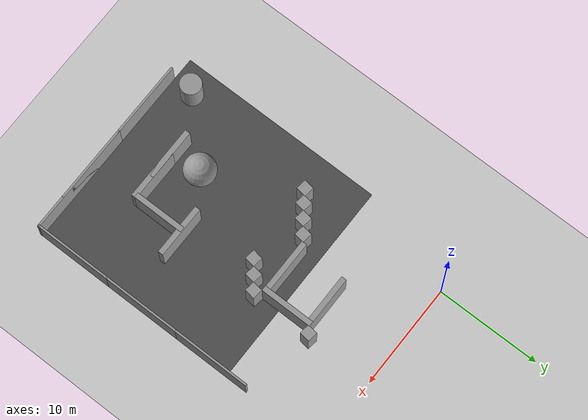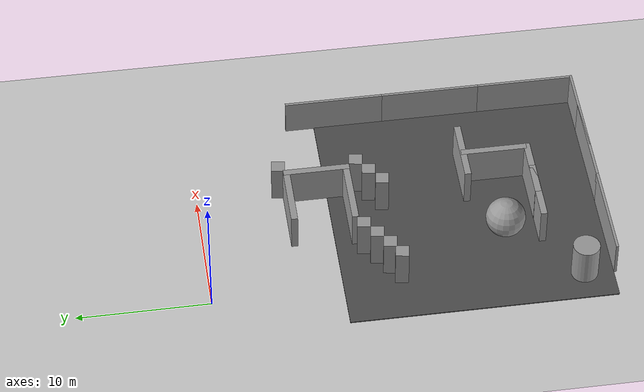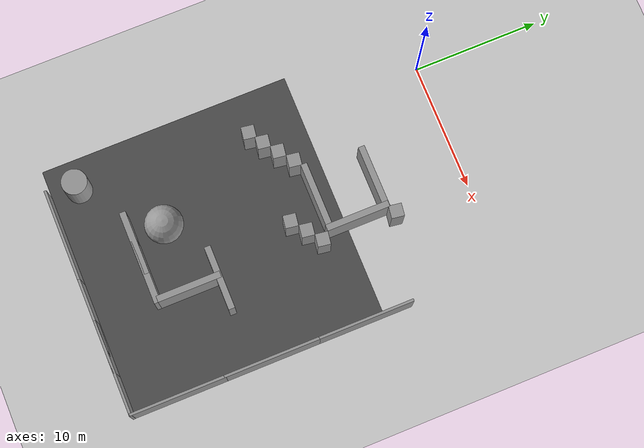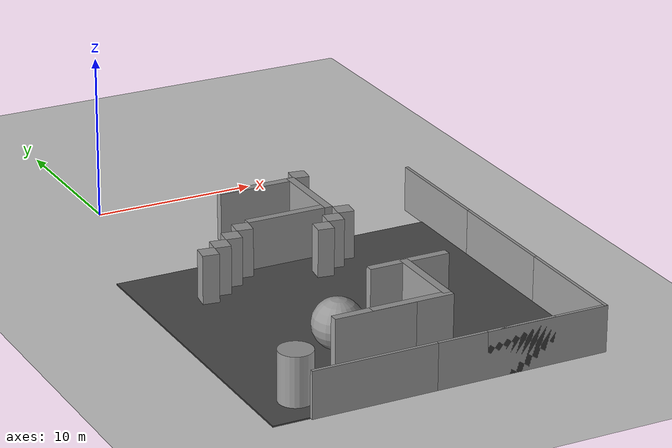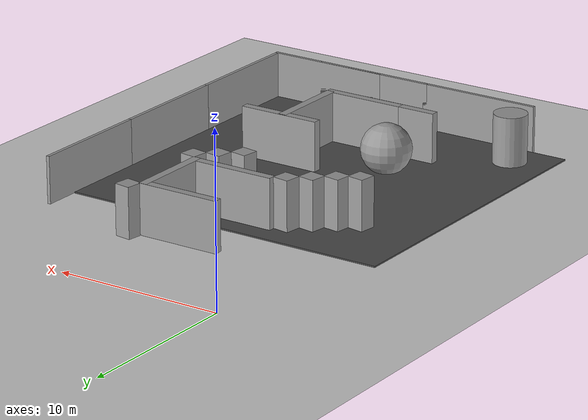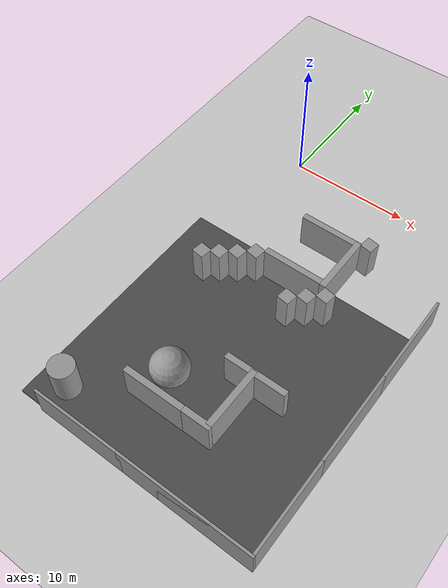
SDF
<sdf version="1.6">
 <world name="default">
  <model name="ground_plane">
   <static>1</static>
   <link name="link">
    <collision name="collision">
     <geometry><plane><normal>0 0 1</normal><size>100 100</size></plane></geometry>
     <surface>
      <contact><collide_bitmask>65535</collide_bitmask></contact>
      <friction><ode><mu>100</mu><mu2>50</mu2></ode></friction>
     </surface>
    </collision>
    <visual name="visual">
     <cast_shadows>0</cast_shadows>
     <geometry><plane><normal>0 0 1</normal><size>100 100</size></plane></geometry>
     <material>
      <script><uri>file://media/materials/scripts/gazebo.material</uri><name>Gazebo/Grey</name></script>
     </material>
    </visual>
   </link>
  </model>
  <model name="asphalt_plane_0_clone_0">
   <static>1</static>
   <link name="link">
    <collision name="collision"><geometry><box><size>20 20 0.1</size></box></geometry></collision>
    <visual name="visual">
     <cast_shadows>0</cast_shadows>
     <geometry><box><size>20 20 0.1</size></box></geometry>
     <material>
      <script>
       <uri>model://asphalt_plane/materials/scripts</uri>
       <uri>model://asphalt_plane/materials/textures</uri>
       <name>vrc/asphalt</name>
      </script>
     </material>
    </visual>
   </link>
   <pose>6.79446 -19.8065 0 0 -0 0</pose>
  </model>
  <model name="grey_wall_clone_clone_3">
   <static>1</static>
   <link name="link">
    <pose>0 0 1.4 0 -0 0</pose>
    <collision name="collision"><geometry><box><size>7.5 0.2 2.8</size></box></geometry></collision>
    <visual name="visual">
     <cast_shadows>0</cast_shadows>
     <geometry><box><size>7.5 0.2 2.8</size></box></geometry>
     <material>
      <script>
       <uri>model://grey_wall/materials/scripts</uri>
       <uri>model://grey_wall/materials/textures</uri>
       <name>vrc/grey_wall</name>
      </script>
     </material>
    </visual>
    <enable_wind>1</enable_wind>
   </link>
   <pose>16.9 -26.2145 0 0 -0 1.5707</pose>
   <enable_wind>1</enable_wind>
  </model>
  <model name="grey_wall_clone_clone_3_clone">
   <static>1</static>
   <link name="link">
    <pose>0 0 1.4 0 -0 0</pose>
    <collision name="collision"><geometry><box><size>7.5 0.2 2.8</size></box></geometry></collision>
    <visual name="visual">
     <cast_shadows>0</cast_shadows>
     <geometry><box><size>7.5 0.2 2.8</size></box></geometry>
     <material>
      <script>
       <uri>model://grey_wall/materials/scripts</uri>
       <uri>model://grey_wall/materials/textures</uri>
       <name>vrc/grey_wall</name>
      </script>
     </material>
    </visual>
    <enable_wind>1</enable_wind>
   </link>
   <pose>16.9 -18.8421 0 0 -0 1.5707</pose>
   <enable_wind>1</enable_wind>
  </model>
  <model name="grey_wall_clone_clone_3_clone_0">
   <static>1</static>
   <link name="link">
    <pose>0 0 1.4 0 -0 0</pose>
    <collision name="collision"><geometry><box><size>7.5 0.2 2.8</size></box></geometry></collision>
    <visual name="visual">
     <cast_shadows>0</cast_shadows>
     <geometry><box><size>7.5 0.2 2.8</size></box></geometry>
     <material>
      <script>
       <uri>model://grey_wall/materials/scripts</uri>
       <uri>model://grey_wall/materials/textures</uri>
       <name>vrc/grey_wall</name>
      </script>
     </material>
    </visual>
    <enable_wind>1</enable_wind>
   </link>
   <pose>16.9 -11.3736 0 0 -0 1.5707</pose>
   <enable_wind>1</enable_wind>
  </model>
  <model name="grey_wall_clone_3">
   <static>1</static>
   <link name="link">
    <pose>0 0 1.4 0 -0 0</pose>
    <collision name="collision"><geometry><box><size>7.5 0.2 2.8</size></box></geometry></collision>
    <visual name="visual">
     <cast_shadows>0</cast_shadows>
     <geometry><box><size>7.5 0.2 2.8</size></box></geometry>
     <material>
      <script>
       <uri>model://grey_wall/materials/scripts</uri>
       <uri>model://grey_wall/materials/textures</uri>
       <name>vrc/grey_wall</name>
      </script>
     </material>
    </visual>
    <enable_wind>1</enable_wind>
   </link>
   <pose>2.73201 -29.9 0 0 -0 0</pose>
   <enable_wind>1</enable_wind>
  </model>
  <model name="grey_wall_clone_4">
   <static>1</static>
   <link name="link">
    <pose>0 0 1.4 0 -0 0</pose>
    <collision name="collision"><geometry><box><size>7.5 0.2 2.8</size></box></geometry></collision>
    <visual name="visual">
     <cast_shadows>0</cast_shadows>
     <geometry><box><size>7.5 0.2 2.8</size></box></geometry>
     <material>
      <script>
       <uri>model://grey_wall/materials/scripts</uri>
       <uri>model://grey_wall/materials/textures</uri>
       <name>vrc/grey_wall</name>
      </script>
     </material>
    </visual>
    <enable_wind>1</enable_wind>
   </link>
   <pose>9.96239 -29.9 0 0 -0 0</pose>
   <enable_wind>1</enable_wind>
  </model>
  <model name="grey_wall_clone_5">
   <static>1</static>
   <link name="link">
    <pose>0 0 1.4 0 -0 0</pose>
    <collision name="collision"><geometry><box><size>7.5 0.2 2.8</size></box></geometry></collision>
    <visual name="visual">
     <cast_shadows>0</cast_shadows>
     <geometry><box><size>7.5 0.2 2.8</size></box></geometry>
     <material>
      <script>
       <uri>model://grey_wall/materials/scripts</uri>
       <uri>model://grey_wall/materials/textures</uri>
       <name>vrc/grey_wall</name>
      </script>
     </material>
    </visual>
    <enable_wind>1</enable_wind>
   </link>
   <pose>13.258 -29.9 0 0 -0 0</pose>
   <enable_wind>1</enable_wind>
  </model>
  <model name="unit_box_1_clone_0_clone_2">
   <link name="link">
    <inertial>
     <mass>1</mass>
     <inertia>
      <ixx>0.166667</ixx>
      <ixy>0</ixy>
      <ixz>0</ixz>
      <iyy>0.166667</iyy>
      <iyz>0</iyz>
      <izz>0.166667</izz>
     </inertia>
    </inertial>
    <visual name="visual">
     <geometry><box><size>1 1 3</size></box></geometry>
     <material>
      <script><name>Gazebo/Grey</name><uri>file://media/materials/scripts/gazebo.material</uri></script>
      <shader type="pixel"><normal_map>__default__</normal_map></shader>
      <ambient>0.3 0.3 0.3 1</ambient>
      <diffuse>0.7 0.7 0.7 1</diffuse>
      <specular>0.01 0.01 0.01 1</specular>
      <emissive>0 0 0 1</emissive>
     </material>
    </visual>
    <collision name="collision">
     <geometry><box><size>1 1 3</size></box></geometry>
     <surface>
      <friction>
       <ode><mu>1</mu><mu2>1</mu2><fdir1>0 0 0</fdir1><slip1>0</slip1><slip2>0</slip2></ode>
       <torsional>
        <coefficient>1</coefficient>
        <patch_radius>0</patch_radius>
        <surface_radius>0</surface_radius>
        <use_patch_radius>1</use_patch_radius>
        <ode><slip>0</slip></ode>
       </torsional>
      </friction>
      <bounce><restitution_coefficient>0</restitution_coefficient><threshold>1e+06</threshold></bounce>
      <contact>
       <collide_without_contact>0</collide_without_contact>
       <collide_without_contact_bitmask>1</collide_without_contact_bitmask>
       <collide_bitmask>1</collide_bitmask>
       <ode>
        <soft_cfm>0</soft_cfm>
        <soft_erp>0.2</soft_erp>
        <kp>1e+13</kp>
        <kd>1</kd>
        <max_vel>0.01</max_vel>
        <min_depth>0</min_depth>
       </ode>
       <bullet>
        <split_impulse>1</split_impulse>
        <split_impulse_penetration_threshold>-0.01</split_impulse_penetration_threshold>
        <soft_cfm>0</soft_cfm>
        <soft_erp>0.2</soft_erp>
        <kp>1e+13</kp>
        <kd>1</kd>
       </bullet>
      </contact>
     </surface>
    </collision>
   </link>
   <static>1</static>
   <pose>10.299 -6.23363 1.52567 0 0 -0.143769</pose>
  </model>
  <model name="unit_box_clone_clone_clone_0">
   <link name="link">
    <inertial>
     <mass>1</mass>
     <inertia>
      <ixx>0.166667</ixx>
      <ixy>0</ixy>
      <ixz>0</ixz>
      <iyy>0.166667</iyy>
      <iyz>0</iyz>
      <izz>0.166667</izz>
     </inertia>
    </inertial>
    <visual name="visual">
     <geometry><box><size>0.5 5 3</size></box></geometry>
     <material>
      <script><name>Gazebo/Grey</name><uri>file://media/materials/scripts/gazebo.material</uri></script>
      <shader type="pixel"><normal_map>__default__</normal_map></shader>
      <ambient>0.3 0.3 0.3 1</ambient>
      <diffuse>0.7 0.7 0.7 1</diffuse>
      <specular>0.01 0.01 0.01 1</specular>
      <emissive>0 0 0 1</emissive>
     </material>
    </visual>
    <collision name="collision">
     <geometry><box><size>1 5 3</size></box></geometry>
     <surface>
      <friction>
       <ode><mu>1</mu><mu2>1</mu2><fdir1>0 0 0</fdir1><slip1>0</slip1><slip2>0</slip2></ode>
       <torsional>
        <coefficient>1</coefficient>
        <patch_radius>0</patch_radius>
        <surface_radius>0</surface_radius>
        <use_patch_radius>1</use_patch_radius>
        <ode><slip>0</slip></ode>
       </torsional>
      </friction>
      <bounce><restitution_coefficient>0</restitution_coefficient><threshold>1e+06</threshold></bounce>
      <contact>
       <collide_without_contact>0</collide_without_contact>
       <collide_without_contact_bitmask>1</collide_without_contact_bitmask>
       <collide_bitmask>1</collide_bitmask>
       <ode>
        <soft_cfm>0</soft_cfm>
        <soft_erp>0.2</soft_erp>
        <kp>1e+13</kp>
        <kd>1</kd>
        <max_vel>0.01</max_vel>
        <min_depth>0</min_depth>
       </ode>
       <bullet>
        <split_impulse>1</split_impulse>
        <split_impulse_penetration_threshold>-0.01</split_impulse_penetration_threshold>
        <soft_cfm>0</soft_cfm>
        <soft_erp>0.2</soft_erp>
        <kp>1e+13</kp>
        <kd>1</kd>
       </bullet>
      </contact>
     </surface>
    </collision>
   </link>
   <static>1</static>
   <pose>9.55661 -9.04199 1.54724 0 -0 6.7e-05</pose>
  </model>
  <model name="unit_box_x_horiz_clone_0_clone">
   <link name="link">
    <inertial>
     <mass>1</mass>
     <inertia>
      <ixx>0.166667</ixx>
      <ixy>0</ixy>
      <ixz>0</ixz>
      <iyy>0.166667</iyy>
      <iyz>0</iyz>
      <izz>0.166667</izz>
     </inertia>
    </inertial>
    <visual name="visual">
     <geometry><box><size>5 0.5 3</size></box></geometry>
     <material>
      <script><name>Gazebo/Grey</name><uri>file://media/materials/scripts/gazebo.material</uri></script>
      <shader type="pixel"><normal_map>__default__</normal_map></shader>
      <ambient>0.3 0.3 0.3 1</ambient>
      <diffuse>0.7 0.7 0.7 1</diffuse>
      <specular>0.01 0.01 0.01 1</specular>
      <emissive>0 0 0 1</emissive>
     </material>
    </visual>
    <collision name="collision">
     <geometry><box><size>5 1 3</size></box></geometry>
     <surface>
      <friction>
       <ode><mu>1</mu><mu2>1</mu2><fdir1>0 0 0</fdir1><slip1>0</slip1><slip2>0</slip2></ode>
       <torsional>
        <coefficient>1</coefficient>
        <patch_radius>0</patch_radius>
        <surface_radius>0</surface_radius>
        <use_patch_radius>1</use_patch_radius>
        <ode><slip>0</slip></ode>
       </torsional>
      </friction>
      <bounce><restitution_coefficient>0</restitution_coefficient><threshold>1e+06</threshold></bounce>
      <contact>
       <collide_without_contact>0</collide_without_contact>
       <collide_without_contact_bitmask>1</collide_without_contact_bitmask>
       <collide_bitmask>1</collide_bitmask>
       <ode>
        <soft_cfm>0</soft_cfm>
        <soft_erp>0.2</soft_erp>
        <kp>1e+13</kp>
        <kd>1</kd>
        <max_vel>0.01</max_vel>
        <min_depth>0</min_depth>
       </ode>
       <bullet>
        <split_impulse>1</split_impulse>
        <split_impulse_penetration_threshold>-0.01</split_impulse_penetration_threshold>
        <soft_cfm>0</soft_cfm>
        <soft_erp>0.2</soft_erp>
        <kp>1e+13</kp>
        <kd>1</kd>
       </bullet>
      </contact>
     </surface>
    </collision>
   </link>
   <static>1</static>
   <pose>7.26708 -6.7685 1.54702 0 -0 6.7e-05</pose>
  </model>
  <model name="unit_box_x_horiz_clone_0_clone_0">
   <link name="link">
    <inertial>
     <mass>1</mass>
     <inertia>
      <ixx>0.166667</ixx>
      <ixy>0</ixy>
      <ixz>0</ixz>
      <iyy>0.166667</iyy>
      <iyz>0</iyz>
      <izz>0.166667</izz>
     </inertia>
    </inertial>
    <visual name="visual">
     <geometry><box><size>5 0.5 3</size></box></geometry>
     <material>
      <script><name>Gazebo/Grey</name><uri>file://media/materials/scripts/gazebo.material</uri></script>
      <shader type="pixel"><normal_map>__default__</normal_map></shader>
      <ambient>0.3 0.3 0.3 1</ambient>
      <diffuse>0.7 0.7 0.7 1</diffuse>
      <specular>0.01 0.01 0.01 1</specular>
      <emissive>0 0 0 1</emissive>
     </material>
    </visual>
    <collision name="collision">
     <geometry><box><size>5 1 3</size></box></geometry>
     <surface>
      <friction>
       <ode><mu>1</mu><mu2>1</mu2><fdir1>0 0 0</fdir1><slip1>0</slip1><slip2>0</slip2></ode>
       <torsional>
        <coefficient>1</coefficient>
        <patch_radius>0</patch_radius>
        <surface_radius>0</surface_radius>
        <use_patch_radius>1</use_patch_radius>
        <ode><slip>0</slip></ode>
       </torsional>
      </friction>
      <bounce><restitution_coefficient>0</restitution_coefficient><threshold>1e+06</threshold></bounce>
      <contact>
       <collide_without_contact>0</collide_without_contact>
       <collide_without_contact_bitmask>1</collide_without_contact_bitmask>
       <collide_bitmask>1</collide_bitmask>
       <ode>
        <soft_cfm>0</soft_cfm>
        <soft_erp>0.2</soft_erp>
        <kp>1e+13</kp>
        <kd>1</kd>
        <max_vel>0.01</max_vel>
        <min_depth>0</min_depth>
       </ode>
       <bullet>
        <split_impulse>1</split_impulse>
        <split_impulse_penetration_threshold>-0.01</split_impulse_penetration_threshold>
        <soft_cfm>0</soft_cfm>
        <soft_erp>0.2</soft_erp>
        <kp>1e+13</kp>
        <kd>1</kd>
       </bullet>
      </contact>
     </surface>
    </collision>
   </link>
   <static>1</static>
   <pose>6.88495 -11.2703 1.54702 0 -0 6.7e-05</pose>
  </model>
  <model name="unit_box_1_clone_0_clone_2_clone">
   <link name="link">
    <inertial>
     <mass>1</mass>
     <inertia>
      <ixx>0.166667</ixx>
      <ixy>0</ixy>
      <ixz>0</ixz>
      <iyy>0.166667</iyy>
      <iyz>0</iyz>
      <izz>0.166667</izz>
     </inertia>
    </inertial>
    <visual name="visual">
     <geometry><box><size>1 1 3</size></box></geometry>
     <material>
      <script><name>Gazebo/Grey</name><uri>file://media/materials/scripts/gazebo.material</uri></script>
      <shader type="pixel"><normal_map>__default__</normal_map></shader>
      <ambient>0.3 0.3 0.3 1</ambient>
      <diffuse>0.7 0.7 0.7 1</diffuse>
      <specular>0.01 0.01 0.01 1</specular>
      <emissive>0 0 0 1</emissive>
     </material>
    </visual>
    <collision name="collision">
     <geometry><box><size>1 1 3</size></box></geometry>
     <surface>
      <friction>
       <ode><mu>1</mu><mu2>1</mu2><fdir1>0 0 0</fdir1><slip1>0</slip1><slip2>0</slip2></ode>
       <torsional>
        <coefficient>1</coefficient>
        <patch_radius>0</patch_radius>
        <surface_radius>0</surface_radius>
        <use_patch_radius>1</use_patch_radius>
        <ode><slip>0</slip></ode>
       </torsional>
      </friction>
      <bounce><restitution_coefficient>0</restitution_coefficient><threshold>1e+06</threshold></bounce>
      <contact>
       <collide_without_contact>0</collide_without_contact>
       <collide_without_contact_bitmask>1</collide_without_contact_bitmask>
       <collide_bitmask>1</collide_bitmask>
       <ode>
        <soft_cfm>0</soft_cfm>
        <soft_erp>0.2</soft_erp>
        <kp>1e+13</kp>
        <kd>1</kd>
        <max_vel>0.01</max_vel>
        <min_depth>0</min_depth>
       </ode>
       <bullet>
        <split_impulse>1</split_impulse>
        <split_impulse_penetration_threshold>-0.01</split_impulse_penetration_threshold>
        <soft_cfm>0</soft_cfm>
        <soft_erp>0.2</soft_erp>
        <kp>1e+13</kp>
        <kd>1</kd>
       </bullet>
      </contact>
     </surface>
    </collision>
   </link>
   <static>1</static>
   <pose>3.8336 -11.8171 1.52567 0 0 -0.143769</pose>
  </model>
  <model name="unit_box_1_clone_0_clone_2_clone_0">
   <link name="link">
    <inertial>
     <mass>1</mass>
     <inertia>
      <ixx>0.166667</ixx>
      <ixy>0</ixy>
      <ixz>0</ixz>
      <iyy>0.166667</iyy>
      <iyz>0</iyz>
      <izz>0.166667</izz>
     </inertia>
    </inertial>
    <visual name="visual">
     <geometry><box><size>1 1 3</size></box></geometry>
     <material>
      <script><name>Gazebo/Grey</name><uri>file://media/materials/scripts/gazebo.material</uri></script>
      <shader type="pixel"><normal_map>__default__</normal_map></shader>
      <ambient>0.3 0.3 0.3 1</ambient>
      <diffuse>0.7 0.7 0.7 1</diffuse>
      <specular>0.01 0.01 0.01 1</specular>
      <emissive>0 0 0 1</emissive>
     </material>
    </visual>
    <collision name="collision">
     <geometry><box><size>1 1 3</size></box></geometry>
     <surface>
      <friction>
       <ode><mu>1</mu><mu2>1</mu2><fdir1>0 0 0</fdir1><slip1>0</slip1><slip2>0</slip2></ode>
       <torsional>
        <coefficient>1</coefficient>
        <patch_radius>0</patch_radius>
        <surface_radius>0</surface_radius>
        <use_patch_radius>1</use_patch_radius>
        <ode><slip>0</slip></ode>
       </torsional>
      </friction>
      <bounce><restitution_coefficient>0</restitution_coefficient><threshold>1e+06</threshold></bounce>
      <contact>
       <collide_without_contact>0</collide_without_contact>
       <collide_without_contact_bitmask>1</collide_without_contact_bitmask>
       <collide_bitmask>1</collide_bitmask>
       <ode>
        <soft_cfm>0</soft_cfm>
        <soft_erp>0.2</soft_erp>
        <kp>1e+13</kp>
        <kd>1</kd>
        <max_vel>0.01</max_vel>
        <min_depth>0</min_depth>
       </ode>
       <bullet>
        <split_impulse>1</split_impulse>
        <split_impulse_penetration_threshold>-0.01</split_impulse_penetration_threshold>
        <soft_cfm>0</soft_cfm>
        <soft_erp>0.2</soft_erp>
        <kp>1e+13</kp>
        <kd>1</kd>
       </bullet>
      </contact>
     </surface>
    </collision>
   </link>
   <static>1</static>
   <pose>2.73754 -12.6606 1.52567 0 0 -0.143769</pose>
  </model>
  <model name="unit_box_1_clone_0_clone_2_clone_1">
   <link name="link">
    <inertial>
     <mass>1</mass>
     <inertia>
      <ixx>0.166667</ixx>
      <ixy>0</ixy>
      <ixz>0</ixz>
      <iyy>0.166667</iyy>
      <iyz>0</iyz>
      <izz>0.166667</izz>
     </inertia>
    </inertial>
    <visual name="visual">
     <geometry><box><size>1 1 3</size></box></geometry>
     <material>
      <script><name>Gazebo/Grey</name><uri>file://media/materials/scripts/gazebo.material</uri></script>
      <shader type="pixel"><normal_map>__default__</normal_map></shader>
      <ambient>0.3 0.3 0.3 1</ambient>
      <diffuse>0.7 0.7 0.7 1</diffuse>
      <specular>0.01 0.01 0.01 1</specular>
      <emissive>0 0 0 1</emissive>
     </material>
    </visual>
    <collision name="collision">
     <geometry><box><size>1 1 3</size></box></geometry>
     <surface>
      <friction>
       <ode><mu>1</mu><mu2>1</mu2><fdir1>0 0 0</fdir1><slip1>0</slip1><slip2>0</slip2></ode>
       <torsional>
        <coefficient>1</coefficient>
        <patch_radius>0</patch_radius>
        <surface_radius>0</surface_radius>
        <use_patch_radius>1</use_patch_radius>
        <ode><slip>0</slip></ode>
       </torsional>
      </friction>
      <bounce><restitution_coefficient>0</restitution_coefficient><threshold>1e+06</threshold></bounce>
      <contact>
       <collide_without_contact>0</collide_without_contact>
       <collide_without_contact_bitmask>1</collide_without_contact_bitmask>
       <collide_bitmask>1</collide_bitmask>
       <ode>
        <soft_cfm>0</soft_cfm>
        <soft_erp>0.2</soft_erp>
        <kp>1e+13</kp>
        <kd>1</kd>
        <max_vel>0.01</max_vel>
        <min_depth>0</min_depth>
       </ode>
       <bullet>
        <split_impulse>1</split_impulse>
        <split_impulse_penetration_threshold>-0.01</split_impulse_penetration_threshold>
        <soft_cfm>0</soft_cfm>
        <soft_erp>0.2</soft_erp>
        <kp>1e+13</kp>
        <kd>1</kd>
       </bullet>
      </contact>
     </surface>
    </collision>
   </link>
   <static>1</static>
   <pose>1.64749 -13.4595 1.52567 0 0 -0.143769</pose>
  </model>
  <model name="unit_box_1_clone_0_clone_2_clone_2">
   <link name="link">
    <inertial>
     <mass>1</mass>
     <inertia>
      <ixx>0.166667</ixx>
      <ixy>0</ixy>
      <ixz>0</ixz>
      <iyy>0.166667</iyy>
      <iyz>0</iyz>
      <izz>0.166667</izz>
     </inertia>
    </inertial>
    <visual name="visual">
     <geometry><box><size>1 1 3</size></box></geometry>
     <material>
      <script><name>Gazebo/Grey</name><uri>file://media/materials/scripts/gazebo.material</uri></script>
      <shader type="pixel"><normal_map>__default__</normal_map></shader>
      <ambient>0.3 0.3 0.3 1</ambient>
      <diffuse>0.7 0.7 0.7 1</diffuse>
      <specular>0.01 0.01 0.01 1</specular>
      <emissive>0 0 0 1</emissive>
     </material>
    </visual>
    <collision name="collision">
     <geometry><box><size>1 1 3</size></box></geometry>
     <surface>
      <friction>
       <ode><mu>1</mu><mu2>1</mu2><fdir1>0 0 0</fdir1><slip1>0</slip1><slip2>0</slip2></ode>
       <torsional>
        <coefficient>1</coefficient>
        <patch_radius>0</patch_radius>
        <surface_radius>0</surface_radius>
        <use_patch_radius>1</use_patch_radius>
        <ode><slip>0</slip></ode>
       </torsional>
      </friction>
      <bounce><restitution_coefficient>0</restitution_coefficient><threshold>1e+06</threshold></bounce>
      <contact>
       <collide_without_contact>0</collide_without_contact>
       <collide_without_contact_bitmask>1</collide_without_contact_bitmask>
       <collide_bitmask>1</collide_bitmask>
       <ode>
        <soft_cfm>0</soft_cfm>
        <soft_erp>0.2</soft_erp>
        <kp>1e+13</kp>
        <kd>1</kd>
        <max_vel>0.01</max_vel>
        <min_depth>0</min_depth>
       </ode>
       <bullet>
        <split_impulse>1</split_impulse>
        <split_impulse_penetration_threshold>-0.01</split_impulse_penetration_threshold>
        <soft_cfm>0</soft_cfm>
        <soft_erp>0.2</soft_erp>
        <kp>1e+13</kp>
        <kd>1</kd>
       </bullet>
      </contact>
     </surface>
    </collision>
   </link>
   <static>1</static>
   <pose>0.55675 -14.1758 1.52567 0 0 -0.143769</pose>
  </model>
  <model name="unit_box_1_clone_0_clone_2_clone_3">
   <link name="link">
    <inertial>
     <mass>1</mass>
     <inertia>
      <ixx>0.166667</ixx>
      <ixy>0</ixy>
      <ixz>0</ixz>
      <iyy>0.166667</iyy>
      <iyz>0</iyz>
      <izz>0.166667</izz>
     </inertia>
    </inertial>
    <visual name="visual">
     <geometry><box><size>1 1 3</size></box></geometry>
     <material>
      <script><name>Gazebo/Grey</name><uri>file://media/materials/scripts/gazebo.material</uri></script>
      <shader type="pixel"><normal_map>__default__</normal_map></shader>
      <ambient>0.3 0.3 0.3 1</ambient>
      <diffuse>0.7 0.7 0.7 1</diffuse>
      <specular>0.01 0.01 0.01 1</specular>
      <emissive>0 0 0 1</emissive>
     </material>
    </visual>
    <collision name="collision">
     <geometry><box><size>1 1 3</size></box></geometry>
     <surface>
      <friction>
       <ode><mu>1</mu><mu2>1</mu2><fdir1>0 0 0</fdir1><slip1>0</slip1><slip2>0</slip2></ode>
       <torsional>
        <coefficient>1</coefficient>
        <patch_radius>0</patch_radius>
        <surface_radius>0</surface_radius>
        <use_patch_radius>1</use_patch_radius>
        <ode><slip>0</slip></ode>
       </torsional>
      </friction>
      <bounce><restitution_coefficient>0</restitution_coefficient><threshold>1e+06</threshold></bounce>
      <contact>
       <collide_without_contact>0</collide_without_contact>
       <collide_without_contact_bitmask>1</collide_without_contact_bitmask>
       <collide_bitmask>1</collide_bitmask>
       <ode>
        <soft_cfm>0</soft_cfm>
        <soft_erp>0.2</soft_erp>
        <kp>1e+13</kp>
        <kd>1</kd>
        <max_vel>0.01</max_vel>
        <min_depth>0</min_depth>
       </ode>
       <bullet>
        <split_impulse>1</split_impulse>
        <split_impulse_penetration_threshold>-0.01</split_impulse_penetration_threshold>
        <soft_cfm>0</soft_cfm>
        <soft_erp>0.2</soft_erp>
        <kp>1e+13</kp>
        <kd>1</kd>
       </bullet>
      </contact>
     </surface>
    </collision>
   </link>
   <static>1</static>
   <pose>10.2254 -12.1051 1.52567 0 0 -0.143769</pose>
  </model>
  <model name="unit_box_1_clone_0_clone_2_clone_4">
   <link name="link">
    <inertial>
     <mass>1</mass>
     <inertia>
      <ixx>0.166667</ixx>
      <ixy>0</ixy>
      <ixz>0</ixz>
      <iyy>0.166667</iyy>
      <iyz>0</iyz>
      <izz>0.166667</izz>
     </inertia>
    </inertial>
    <visual name="visual">
     <geometry><box><size>1 1 3</size></box></geometry>
     <material>
      <script><name>Gazebo/Grey</name><uri>file://media/materials/scripts/gazebo.material</uri></script>
      <shader type="pixel"><normal_map>__default__</normal_map></shader>
      <ambient>0.3 0.3 0.3 1</ambient>
      <diffuse>0.7 0.7 0.7 1</diffuse>
      <specular>0.01 0.01 0.01 1</specular>
      <emissive>0 0 0 1</emissive>
     </material>
    </visual>
    <collision name="collision">
     <geometry><box><size>1 1 3</size></box></geometry>
     <surface>
      <friction>
       <ode><mu>1</mu><mu2>1</mu2><fdir1>0 0 0</fdir1><slip1>0</slip1><slip2>0</slip2></ode>
       <torsional>
        <coefficient>1</coefficient>
        <patch_radius>0</patch_radius>
        <surface_radius>0</surface_radius>
        <use_patch_radius>1</use_patch_radius>
        <ode><slip>0</slip></ode>
       </torsional>
      </friction>
      <bounce><restitution_coefficient>0</restitution_coefficient><threshold>1e+06</threshold></bounce>
      <contact>
       <collide_without_contact>0</collide_without_contact>
       <collide_without_contact_bitmask>1</collide_without_contact_bitmask>
       <collide_bitmask>1</collide_bitmask>
       <ode>
        <soft_cfm>0</soft_cfm>
        <soft_erp>0.2</soft_erp>
        <kp>1e+13</kp>
        <kd>1</kd>
        <max_vel>0.01</max_vel>
        <min_depth>0</min_depth>
       </ode>
       <bullet>
        <split_impulse>1</split_impulse>
        <split_impulse_penetration_threshold>-0.01</split_impulse_penetration_threshold>
        <soft_cfm>0</soft_cfm>
        <soft_erp>0.2</soft_erp>
        <kp>1e+13</kp>
        <kd>1</kd>
       </bullet>
      </contact>
     </surface>
    </collision>
   </link>
   <static>1</static>
   <pose>9.13743 -12.9426 1.52567 0 0 -0.143769</pose>
  </model>
  <model name="unit_box_1_clone_0_clone_2_clone_5">
   <link name="link">
    <inertial>
     <mass>1</mass>
     <inertia>
      <ixx>0.166667</ixx>
      <ixy>0</ixy>
      <ixz>0</ixz>
      <iyy>0.166667</iyy>
      <iyz>0</iyz>
      <izz>0.166667</izz>
     </inertia>
    </inertial>
    <visual name="visual">
     <geometry><box><size>1 1 3</size></box></geometry>
     <material>
      <script><name>Gazebo/Grey</name><uri>file://media/materials/scripts/gazebo.material</uri></script>
      <shader type="pixel"><normal_map>__default__</normal_map></shader>
      <ambient>0.3 0.3 0.3 1</ambient>
      <diffuse>0.7 0.7 0.7 1</diffuse>
      <specular>0.01 0.01 0.01 1</specular>
      <emissive>0 0 0 1</emissive>
     </material>
    </visual>
    <collision name="collision">
     <geometry><box><size>1 1 3</size></box></geometry>
     <surface>
      <friction>
       <ode><mu>1</mu><mu2>1</mu2><fdir1>0 0 0</fdir1><slip1>0</slip1><slip2>0</slip2></ode>
       <torsional>
        <coefficient>1</coefficient>
        <patch_radius>0</patch_radius>
        <surface_radius>0</surface_radius>
        <use_patch_radius>1</use_patch_radius>
        <ode><slip>0</slip></ode>
       </torsional>
      </friction>
      <bounce><restitution_coefficient>0</restitution_coefficient><threshold>1e+06</threshold></bounce>
      <contact>
       <collide_without_contact>0</collide_without_contact>
       <collide_without_contact_bitmask>1</collide_without_contact_bitmask>
       <collide_bitmask>1</collide_bitmask>
       <ode>
        <soft_cfm>0</soft_cfm>
        <soft_erp>0.2</soft_erp>
        <kp>1e+13</kp>
        <kd>1</kd>
        <max_vel>0.01</max_vel>
        <min_depth>0</min_depth>
       </ode>
       <bullet>
        <split_impulse>1</split_impulse>
        <split_impulse_penetration_threshold>-0.01</split_impulse_penetration_threshold>
        <soft_cfm>0</soft_cfm>
        <soft_erp>0.2</soft_erp>
        <kp>1e+13</kp>
        <kd>1</kd>
       </bullet>
      </contact>
     </surface>
    </collision>
   </link>
   <static>1</static>
   <pose>8.038 -13.8061 1.52567 0 0 -0.143769</pose>
  </model>
  <model name="unit_box_clone_clone_clone_0_clone_0">
   <link name="link">
    <inertial>
     <mass>1</mass>
     <inertia>
      <ixx>0.166667</ixx>
      <ixy>0</ixy>
      <ixz>0</ixz>
      <iyy>0.166667</iyy>
      <iyz>0</iyz>
      <izz>0.166667</izz>
     </inertia>
    </inertial>
    <visual name="visual">
     <geometry><box><size>0.5 5 3</size></box></geometry>
     <material>
      <script><name>Gazebo/Grey</name><uri>file://media/materials/scripts/gazebo.material</uri></script>
      <shader type="pixel"><normal_map>__default__</normal_map></shader>
      <ambient>0.3 0.3 0.3 1</ambient>
      <diffuse>0.7 0.7 0.7 1</diffuse>
      <specular>0.01 0.01 0.01 1</specular>
      <emissive>0 0 0 1</emissive>
     </material>
    </visual>
    <collision name="collision">
     <geometry><box><size>1 5 3</size></box></geometry>
     <surface>
      <friction>
       <ode><mu>1</mu><mu2>1</mu2><fdir1>0 0 0</fdir1><slip1>0</slip1><slip2>0</slip2></ode>
       <torsional>
        <coefficient>1</coefficient>
        <patch_radius>0</patch_radius>
        <surface_radius>0</surface_radius>
        <use_patch_radius>1</use_patch_radius>
        <ode><slip>0</slip></ode>
       </torsional>
      </friction>
      <bounce><restitution_coefficient>0</restitution_coefficient><threshold>1e+06</threshold></bounce>
      <contact>
       <collide_without_contact>0</collide_without_contact>
       <collide_without_contact_bitmask>1</collide_without_contact_bitmask>
       <collide_bitmask>1</collide_bitmask>
       <ode>
        <soft_cfm>0</soft_cfm>
        <soft_erp>0.2</soft_erp>
        <kp>1e+13</kp>
        <kd>1</kd>
        <max_vel>0.01</max_vel>
        <min_depth>0</min_depth>
       </ode>
       <bullet>
        <split_impulse>1</split_impulse>
        <split_impulse_penetration_threshold>-0.01</split_impulse_penetration_threshold>
        <soft_cfm>0</soft_cfm>
        <soft_erp>0.2</soft_erp>
        <kp>1e+13</kp>
        <kd>1</kd>
       </bullet>
      </contact>
     </surface>
    </collision>
   </link>
   <static>1</static>
   <pose>9.8036 -22.5785 1.54724 0 -0 6.7e-05</pose>
  </model>
  <model name="unit_box_x_horiz_clone_0_clone_clone_1">
   <link name="link">
    <inertial>
     <mass>1</mass>
     <inertia>
      <ixx>0.166667</ixx>
      <ixy>0</ixy>
      <ixz>0</ixz>
      <iyy>0.166667</iyy>
      <iyz>0</iyz>
      <izz>0.166667</izz>
     </inertia>
    </inertial>
    <visual name="visual">
     <geometry><box><size>5 0.5 3</size></box></geometry>
     <material>
      <script><name>Gazebo/Grey</name><uri>file://media/materials/scripts/gazebo.material</uri></script>
      <shader type="pixel"><normal_map>__default__</normal_map></shader>
      <ambient>0.3 0.3 0.3 1</ambient>
      <diffuse>0.7 0.7 0.7 1</diffuse>
      <specular>0.01 0.01 0.01 1</specular>
      <emissive>0 0 0 1</emissive>
     </material>
    </visual>
    <collision name="collision">
     <geometry><box><size>5 1 3</size></box></geometry>
     <surface>
      <friction>
       <ode><mu>1</mu><mu2>1</mu2><fdir1>0 0 0</fdir1><slip1>0</slip1><slip2>0</slip2></ode>
       <torsional>
        <coefficient>1</coefficient>
        <patch_radius>0</patch_radius>
        <surface_radius>0</surface_radius>
        <use_patch_radius>1</use_patch_radius>
        <ode><slip>0</slip></ode>
       </torsional>
      </friction>
      <bounce><restitution_coefficient>0</restitution_coefficient><threshold>1e+06</threshold></bounce>
      <contact>
       <collide_without_contact>0</collide_without_contact>
       <collide_without_contact_bitmask>1</collide_without_contact_bitmask>
       <collide_bitmask>1</collide_bitmask>
       <ode>
        <soft_cfm>0</soft_cfm>
        <soft_erp>0.2</soft_erp>
        <kp>1e+13</kp>
        <kd>1</kd>
        <max_vel>0.01</max_vel>
        <min_depth>0</min_depth>
       </ode>
       <bullet>
        <split_impulse>1</split_impulse>
        <split_impulse_penetration_threshold>-0.01</split_impulse_penetration_threshold>
        <soft_cfm>0</soft_cfm>
        <soft_erp>0.2</soft_erp>
        <kp>1e+13</kp>
        <kd>1</kd>
       </bullet>
      </contact>
     </surface>
    </collision>
   </link>
   <static>1</static>
   <pose>7.55007 -25.1287 1.54702 0 -0 6.7e-05</pose>
  </model>
  <model name="unit_box_x_horiz_clone_0_clone_clone_2">
   <link name="link">
    <inertial>
     <mass>1</mass>
     <inertia>
      <ixx>0.166667</ixx>
      <ixy>0</ixy>
      <ixz>0</ixz>
      <iyy>0.166667</iyy>
      <iyz>0</iyz>
      <izz>0.166667</izz>
     </inertia>
    </inertial>
    <visual name="visual">
     <geometry><box><size>5 0.5 3</size></box></geometry>
     <material>
      <script><name>Gazebo/Grey</name><uri>file://media/materials/scripts/gazebo.material</uri></script>
      <shader type="pixel"><normal_map>__default__</normal_map></shader>
      <ambient>0.3 0.3 0.3 1</ambient>
      <diffuse>0.7 0.7 0.7 1</diffuse>
      <specular>0.01 0.01 0.01 1</specular>
      <emissive>0 0 0 1</emissive>
     </material>
    </visual>
    <collision name="collision">
     <geometry><box><size>5 1 3</size></box></geometry>
     <surface>
      <friction>
       <ode><mu>1</mu><mu2>1</mu2><fdir1>0 0 0</fdir1><slip1>0</slip1><slip2>0</slip2></ode>
       <torsional>
        <coefficient>1</coefficient>
        <patch_radius>0</patch_radius>
        <surface_radius>0</surface_radius>
        <use_patch_radius>1</use_patch_radius>
        <ode><slip>0</slip></ode>
       </torsional>
      </friction>
      <bounce><restitution_coefficient>0</restitution_coefficient><threshold>1e+06</threshold></bounce>
      <contact>
       <collide_without_contact>0</collide_without_contact>
       <collide_without_contact_bitmask>1</collide_without_contact_bitmask>
       <collide_bitmask>1</collide_bitmask>
       <ode>
        <soft_cfm>0</soft_cfm>
        <soft_erp>0.2</soft_erp>
        <kp>1e+13</kp>
        <kd>1</kd>
        <max_vel>0.01</max_vel>
        <min_depth>0</min_depth>
       </ode>
       <bullet>
        <split_impulse>1</split_impulse>
        <split_impulse_penetration_threshold>-0.01</split_impulse_penetration_threshold>
        <soft_cfm>0</soft_cfm>
        <soft_erp>0.2</soft_erp>
        <kp>1e+13</kp>
        <kd>1</kd>
       </bullet>
      </contact>
     </surface>
    </collision>
   </link>
   <static>1</static>
   <pose>10.0196 -20.2438 1.54702 0 -0 6.7e-05</pose>
  </model>
  <model name="unit_sphere_clone_clone_clone">
   <link name="link">
    <inertial>
     <mass>1</mass>
     <inertia><ixx>0.1</ixx><ixy>0</ixy><ixz>0</ixz><iyy>0.1</iyy><iyz>0</iyz><izz>0.1</izz></inertia>
    </inertial>
    <visual name="visual">
     <geometry><sphere><radius>1.5</radius></sphere></geometry>
     <material>
      <script><name>Gazebo/Grey</name><uri>file://media/materials/scripts/gazebo.material</uri></script>
      <shader type="pixel"><normal_map>__default__</normal_map></shader>
      <ambient>0.3 0.3 0.3 1</ambient>
      <diffuse>0.7 0.7 0.7 1</diffuse>
      <specular>0.01 0.01 0.01 1</specular>
      <emissive>0 0 0 1</emissive>
     </material>
    </visual>
    <collision name="collision">
     <geometry><sphere><radius>1.5</radius></sphere></geometry>
     <surface>
      <friction>
       <ode><mu>1</mu><mu2>1</mu2><fdir1>0 0 0</fdir1><slip1>0</slip1><slip2>0</slip2></ode>
       <torsional>
        <coefficient>1</coefficient>
        <patch_radius>0</patch_radius>
        <surface_radius>0</surface_radius>
        <use_patch_radius>1</use_patch_radius>
        <ode><slip>0</slip></ode>
       </torsional>
      </friction>
      <bounce><restitution_coefficient>0</restitution_coefficient><threshold>1e+06</threshold></bounce>
      <contact>
       <collide_without_contact>0</collide_without_contact>
       <collide_without_contact_bitmask>1</collide_without_contact_bitmask>
       <collide_bitmask>1</collide_bitmask>
       <ode>
        <soft_cfm>0</soft_cfm>
        <soft_erp>0.2</soft_erp>
        <kp>1e+13</kp>
        <kd>1</kd>
        <max_vel>0.01</max_vel>
        <min_depth>0</min_depth>
       </ode>
       <bullet>
        <split_impulse>1</split_impulse>
        <split_impulse_penetration_threshold>-0.01</split_impulse_penetration_threshold>
        <soft_cfm>0</soft_cfm>
        <soft_erp>0.2</soft_erp>
        <kp>1e+13</kp>
        <kd>1</kd>
       </bullet>
      </contact>
     </surface>
    </collision>
   </link>
   <static>1</static>
   <pose>4.36639 -22.6032 1.31824 0.023046 0.019979 -0.003707</pose>
  </model>
  <model name="unit_box_x_horiz_clone_0_clone_clone_1_clone">
   <link name="link">
    <inertial>
     <mass>1</mass>
     <inertia>
      <ixx>0.166667</ixx>
      <ixy>0</ixy>
      <ixz>0</ixz>
      <iyy>0.166667</iyy>
      <iyz>0</iyz>
      <izz>0.166667</izz>
     </inertia>
    </inertial>
    <visual name="visual">
     <geometry><box><size>5 0.5 3</size></box></geometry>
     <material>
      <script><name>Gazebo/Grey</name><uri>file://media/materials/scripts/gazebo.material</uri></script>
      <shader type="pixel"><normal_map>__default__</normal_map></shader>
      <ambient>0.3 0.3 0.3 1</ambient>
      <diffuse>0.7 0.7 0.7 1</diffuse>
      <specular>0.01 0.01 0.01 1</specular>
      <emissive>0 0 0 1</emissive>
     </material>
    </visual>
    <collision name="collision">
     <geometry><box><size>5 1 3</size></box></geometry>
     <surface>
      <friction>
       <ode><mu>1</mu><mu2>1</mu2><fdir1>0 0 0</fdir1><slip1>0</slip1><slip2>0</slip2></ode>
       <torsional>
        <coefficient>1</coefficient>
        <patch_radius>0</patch_radius>
        <surface_radius>0</surface_radius>
        <use_patch_radius>1</use_patch_radius>
        <ode><slip>0</slip></ode>
       </torsional>
      </friction>
      <bounce><restitution_coefficient>0</restitution_coefficient><threshold>1e+06</threshold></bounce>
      <contact>
       <collide_without_contact>0</collide_without_contact>
       <collide_without_contact_bitmask>1</collide_without_contact_bitmask>
       <collide_bitmask>1</collide_bitmask>
       <ode>
        <soft_cfm>0</soft_cfm>
        <soft_erp>0.2</soft_erp>
        <kp>1e+13</kp>
        <kd>1</kd>
        <max_vel>0.01</max_vel>
        <min_depth>0</min_depth>
       </ode>
       <bullet>
        <split_impulse>1</split_impulse>
        <split_impulse_penetration_threshold>-0.01</split_impulse_penetration_threshold>
        <soft_cfm>0</soft_cfm>
        <soft_erp>0.2</soft_erp>
        <kp>1e+13</kp>
        <kd>1</kd>
       </bullet>
      </contact>
     </surface>
    </collision>
   </link>
   <static>1</static>
   <pose>5.23867 -25.1427 1.54702 0 -0 6.7e-05</pose>
  </model>
  <model name="unit_cylinder_01_clone_3_clone_0_clone_0">
   <link name="link">
    <inertial>
     <mass>1</mass>
     <inertia><ixx>0.145833</ixx><ixy>0</ixy><ixz>0</ixz><iyy>0.145833</iyy><iyz>0</iyz><izz>0.125</izz></inertia>
    </inertial>
    <visual name="visual">
     <geometry><cylinder><radius>1</radius><length>3</length></cylinder></geometry>
     <material>
      <script><name>Gazebo/Grey</name><uri>file://media/materials/scripts/gazebo.material</uri></script>
      <shader type="pixel"><normal_map>__default__</normal_map></shader>
      <ambient>0.3 0.3 0.3 1</ambient>
      <diffuse>0.7 0.7 0.7 1</diffuse>
      <specular>0.01 0.01 0.01 1</specular>
      <emissive>0 0 0 1</emissive>
     </material>
    </visual>
    <collision name="collision">
     <geometry><cylinder><radius>1</radius><length>3</length></cylinder></geometry>
     <surface>
      <friction>
       <ode><mu>1</mu><mu2>1</mu2><fdir1>0 0 0</fdir1><slip1>0</slip1><slip2>0</slip2></ode>
       <torsional>
        <coefficient>1</coefficient>
        <patch_radius>0</patch_radius>
        <surface_radius>0</surface_radius>
        <use_patch_radius>1</use_patch_radius>
        <ode><slip>0</slip></ode>
       </torsional>
      </friction>
      <bounce><restitution_coefficient>0</restitution_coefficient><threshold>1e+06</threshold></bounce>
      <contact>
       <collide_without_contact>0</collide_without_contact>
       <collide_without_contact_bitmask>1</collide_without_contact_bitmask>
       <collide_bitmask>1</collide_bitmask>
       <ode>
        <soft_cfm>0</soft_cfm>
        <soft_erp>0.2</soft_erp>
        <kp>1e+13</kp>
        <kd>1</kd>
        <max_vel>0.01</max_vel>
        <min_depth>0</min_depth>
       </ode>
       <bullet>
        <split_impulse>1</split_impulse>
        <split_impulse_penetration_threshold>-0.01</split_impulse_penetration_threshold>
        <soft_cfm>0</soft_cfm>
        <soft_erp>0.2</soft_erp>
        <kp>1e+13</kp>
        <kd>1</kd>
       </bullet>
      </contact>
     </surface>
    </collision>
   </link>
   <static>1</static>
   <pose>-0.781365 -27.6432 1.52285 1e-06 2e-06 4e-06</pose>
  </model>
 </world>
</sdf>
